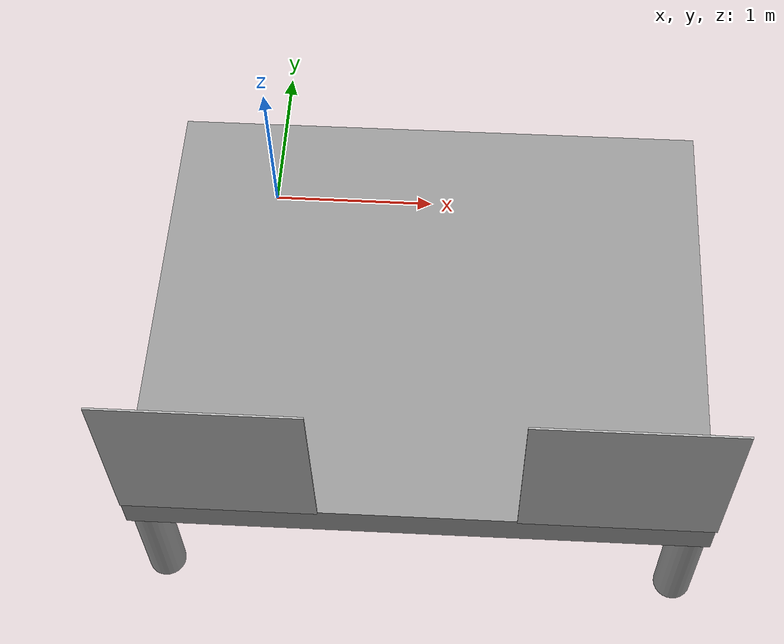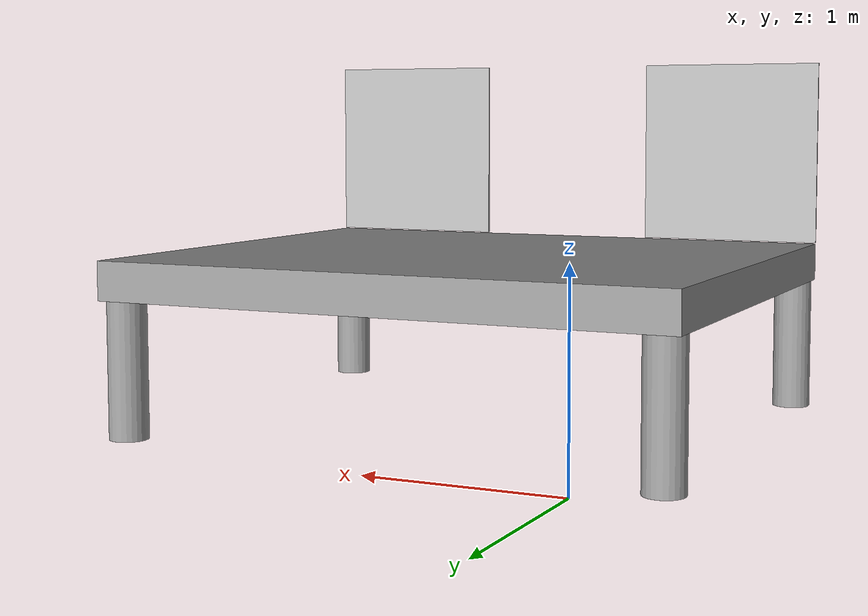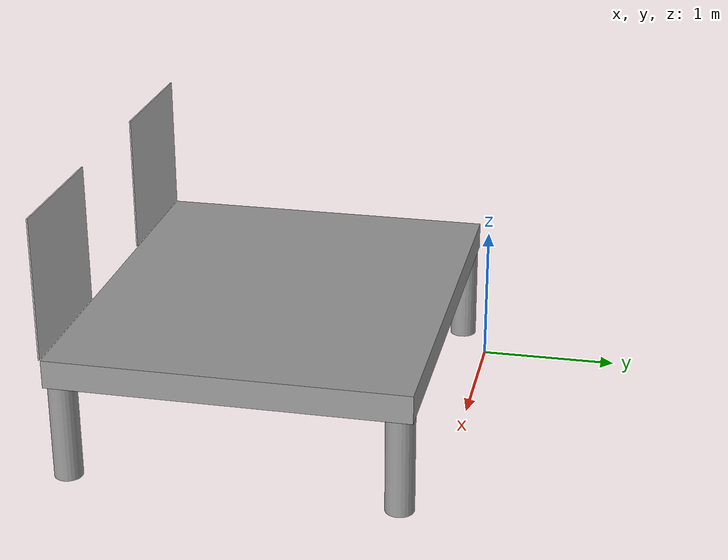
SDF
<?xml version='1.0'?>
<sdf version='1.6'>
  <model name='tag_table'>
    <model name='Apriltag36_11_00001'>
      <link name='main'>
        <pose frame=''>0 0 0 0 -0 0</pose>
        <visual name='main_Visual'>
          <geometry>
            <box>
              <size>1 1 0.01</size>
            </box>
          </geometry>
          <material>
            <script>
              <uri>model://Apriltag36_11_00001/materials/scripts</uri>
              <uri>model://Apriltag36_11_00001/materials/textures</uri>
              <name>Apriltag36_11_00001</name>
            </script>
          </material>
        </visual>
      </link>
      <static>1</static>
      <pose frame=''>0.051519 -2.63187 1.40505 1.5708 -0 0</pose>
    </model>
    <model name='Apriltag36_11_00002'>
      <link name='main'>
        <pose frame=''>0 0 0 0 -0 0</pose>
        <visual name='main_Visual'>
          <geometry>
            <box>
              <size>1 1 0.01</size>
            </box>
          </geometry>
          <material>
            <script>
              <uri>model://Apriltag36_11_00002/materials/scripts</uri>
              <uri>model://Apriltag36_11_00002/materials/textures</uri>
              <name>Apriltag36_11_00002</name>
            </script>
          </material>
        </visual>
      </link>
      <static>1</static>
      <pose frame=''>2.05722 -2.63187 1.40505 1.5708 -0 0</pose>
    </model>
    <model name='dock_table'>
      <link name='link_1'>
        <pose frame=''>1.4 1.15 0.35 0 -0 0</pose>
        <inertial>
          <mass>1</mass>
          <inertia>
            <ixx>0.145833</ixx>
            <ixy>0</ixy>
            <ixz>0</ixz>
            <iyy>0.145833</iyy>
            <iyz>0</iyz>
            <izz>0.125</izz>
          </inertia>
          <pose frame=''>0 0 0 0 -0 0</pose>
        </inertial>
        <gravity>1</gravity>
        <self_collide>0</self_collide>
        <kinematic>0</kinematic>
        <visual name='visual'>
          <pose frame=''>0 0 0 0 -0 0</pose>
          <geometry>
            <cylinder>
              <radius>0.1</radius>
              <length>0.7</length>
            </cylinder>
          </geometry>
          <material>
            <lighting>1</lighting>
            <script>
              <uri>file://media/materials/scripts/gazebo.material</uri>
              <name>Gazebo/Grey</name>
            </script>
            <shader type='pixel'>
              <normal_map>__default__</normal_map>
            </shader>
            <ambient>0.3 0.3 0.3 1</ambient>
            <diffuse>0.7 0.7 0.7 1</diffuse>
            <specular>0.01 0.01 0.01 1</specular>
            <emissive>0 0 0 1</emissive>
          </material>
          <transparency>0</transparency>
          <cast_shadows>1</cast_shadows>
        </visual>
        <collision name='collision'>
          <laser_retro>0</laser_retro>
          <max_contacts>10</max_contacts>
          <pose frame=''>0 0 0 0 -0 0</pose>
          <geometry>
            <cylinder>
              <radius>0.1</radius>
              <length>0.7</length>
            </cylinder>
          </geometry>
          <surface>
            <friction>
              <ode>
                <mu>1</mu>
                <mu2>1</mu2>
                <fdir1>0 0 0</fdir1>
                <slip1>0</slip1>
                <slip2>0</slip2>
              </ode>
              <torsional>
                <coefficient>1</coefficient>
                <patch_radius>0</patch_radius>
                <surface_radius>0</surface_radius>
                <use_patch_radius>1</use_patch_radius>
                <ode>
                  <slip>0</slip>
                </ode>
              </torsional>
            </friction>
            <bounce>
              <restitution_coefficient>0</restitution_coefficient>
              <threshold>1e+06</threshold>
            </bounce>
            <contact>
              <collide_without_contact>0</collide_without_contact>
              <collide_without_contact_bitmask>1</collide_without_contact_bitmask>
              <collide_bitmask>1</collide_bitmask>
              <ode>
                <soft_cfm>0</soft_cfm>
                <soft_erp>0.2</soft_erp>
                <kp>1e+13</kp>
                <kd>1</kd>
                <max_vel>0.01</max_vel>
                <min_depth>0</min_depth>
              </ode>
              <bullet>
                <split_impulse>1</split_impulse>
                <split_impulse_penetration_threshold>-0.01</split_impulse_penetration_threshold>
                <soft_cfm>0</soft_cfm>
                <soft_erp>0.2</soft_erp>
                <kp>1e+13</kp>
                <kd>1</kd>
              </bullet>
            </contact>
          </surface>
        </collision>
      </link>
      <link name='link_1_clone'>
        <pose frame=''>1.4 -1.15 0.35 0 -0 0</pose>
        <inertial>
          <mass>1</mass>
          <inertia>
            <ixx>0.145833</ixx>
            <ixy>0</ixy>
            <ixz>0</ixz>
            <iyy>0.145833</iyy>
            <iyz>0</iyz>
            <izz>0.125</izz>
          </inertia>
          <pose frame=''>0 0 0 0 -0 0</pose>
        </inertial>
        <self_collide>0</self_collide>
        <kinematic>0</kinematic>
        <gravity>1</gravity>
        <visual name='visual'>
          <pose frame=''>0 0 0 0 -0 0</pose>
          <geometry>
            <cylinder>
              <radius>0.1</radius>
              <length>0.7</length>
            </cylinder>
          </geometry>
          <material>
            <lighting>1</lighting>
            <script>
              <uri>file://media/materials/scripts/gazebo.material</uri>
              <name>Gazebo/Grey</name>
            </script>
            <shader type='pixel'>
              <normal_map>__default__</normal_map>
            </shader>
            <ambient>0.3 0.3 0.3 1</ambient>
            <diffuse>0.7 0.7 0.7 1</diffuse>
            <specular>0.01 0.01 0.01 1</specular>
            <emissive>0 0 0 1</emissive>
          </material>
          <transparency>0</transparency>
          <cast_shadows>1</cast_shadows>
        </visual>
        <collision name='collision'>
          <laser_retro>0</laser_retro>
          <max_contacts>10</max_contacts>
          <pose frame=''>0 0 0 0 -0 0</pose>
          <geometry>
            <cylinder>
              <radius>0.1</radius>
              <length>0.7</length>
            </cylinder>
          </geometry>
          <surface>
            <friction>
              <ode>
                <mu>1</mu>
                <mu2>1</mu2>
                <fdir1>0 0 0</fdir1>
                <slip1>0</slip1>
                <slip2>0</slip2>
              </ode>
              <torsional>
                <coefficient>1</coefficient>
                <patch_radius>0</patch_radius>
                <surface_radius>0</surface_radius>
                <use_patch_radius>1</use_patch_radius>
                <ode>
                  <slip>0</slip>
                </ode>
              </torsional>
            </friction>
            <bounce>
              <restitution_coefficient>0</restitution_coefficient>
              <threshold>1e+06</threshold>
            </bounce>
            <contact>
              <collide_without_contact>0</collide_without_contact>
              <collide_without_contact_bitmask>1</collide_without_contact_bitmask>
              <collide_bitmask>1</collide_bitmask>
              <ode>
                <soft_cfm>0</soft_cfm>
                <soft_erp>0.2</soft_erp>
                <kp>1e+13</kp>
                <kd>1</kd>
                <max_vel>0.01</max_vel>
                <min_depth>0</min_depth>
              </ode>
              <bullet>
                <split_impulse>1</split_impulse>
                <split_impulse_penetration_threshold>-0.01</split_impulse_penetration_threshold>
                <soft_cfm>0</soft_cfm>
                <soft_erp>0.2</soft_erp>
                <kp>1e+13</kp>
                <kd>1</kd>
              </bullet>
            </contact>
          </surface>
        </collision>
      </link>
      <link name='link_1_clone_0'>
        <pose frame=''>-1.4 1.15 0.35 0 -0 0</pose>
        <inertial>
          <mass>1</mass>
          <inertia>
            <ixx>0.145833</ixx>
            <ixy>0</ixy>
            <ixz>0</ixz>
            <iyy>0.145833</iyy>
            <iyz>0</iyz>
            <izz>0.125</izz>
          </inertia>
          <pose frame=''>0 0 0 0 -0 0</pose>
        </inertial>
        <self_collide>0</self_collide>
        <kinematic>0</kinematic>
        <gravity>1</gravity>
        <visual name='visual'>
          <pose frame=''>0 0 0 0 -0 0</pose>
          <geometry>
            <cylinder>
              <radius>0.1</radius>
              <length>0.7</length>
            </cylinder>
          </geometry>
          <material>
            <lighting>1</lighting>
            <script>
              <uri>file://media/materials/scripts/gazebo.material</uri>
              <name>Gazebo/Grey</name>
            </script>
            <shader type='pixel'>
              <normal_map>__default__</normal_map>
            </shader>
            <ambient>0.3 0.3 0.3 1</ambient>
            <diffuse>0.7 0.7 0.7 1</diffuse>
            <specular>0.01 0.01 0.01 1</specular>
            <emissive>0 0 0 1</emissive>
          </material>
          <transparency>0</transparency>
          <cast_shadows>1</cast_shadows>
        </visual>
        <collision name='collision'>
          <laser_retro>0</laser_retro>
          <max_contacts>10</max_contacts>
          <pose frame=''>0 0 0 0 -0 0</pose>
          <geometry>
            <cylinder>
              <radius>0.1</radius>
              <length>0.7</length>
            </cylinder>
          </geometry>
          <surface>
            <friction>
              <ode>
                <mu>1</mu>
                <mu2>1</mu2>
                <fdir1>0 0 0</fdir1>
                <slip1>0</slip1>
                <slip2>0</slip2>
              </ode>
              <torsional>
                <coefficient>1</coefficient>
                <patch_radius>0</patch_radius>
                <surface_radius>0</surface_radius>
                <use_patch_radius>1</use_patch_radius>
                <ode>
                  <slip>0</slip>
                </ode>
              </torsional>
            </friction>
            <bounce>
              <restitution_coefficient>0</restitution_coefficient>
              <threshold>1e+06</threshold>
            </bounce>
            <contact>
              <collide_without_contact>0</collide_without_contact>
              <collide_without_contact_bitmask>1</collide_without_contact_bitmask>
              <collide_bitmask>1</collide_bitmask>
              <ode>
                <soft_cfm>0</soft_cfm>
                <soft_erp>0.2</soft_erp>
                <kp>1e+13</kp>
                <kd>1</kd>
                <max_vel>0.01</max_vel>
                <min_depth>0</min_depth>
              </ode>
              <bullet>
                <split_impulse>1</split_impulse>
                <split_impulse_penetration_threshold>-0.01</split_impulse_penetration_threshold>
                <soft_cfm>0</soft_cfm>
                <soft_erp>0.2</soft_erp>
                <kp>1e+13</kp>
                <kd>1</kd>
              </bullet>
            </contact>
          </surface>
        </collision>
      </link>
      <link name='link_1_clone_1'>
        <pose frame=''>-1.4 -1.15 0.35 0 -0 0</pose>
        <inertial>
          <mass>1</mass>
          <inertia>
            <ixx>0.145833</ixx>
            <ixy>0</ixy>
            <ixz>0</ixz>
            <iyy>0.145833</iyy>
            <iyz>0</iyz>
            <izz>0.125</izz>
          </inertia>
          <pose frame=''>0 0 0 0 -0 0</pose>
        </inertial>
        <self_collide>0</self_collide>
        <kinematic>0</kinematic>
        <gravity>1</gravity>
        <visual name='visual'>
          <pose frame=''>0 0 0 0 -0 0</pose>
          <geometry>
            <cylinder>
              <radius>0.1</radius>
              <length>0.7</length>
            </cylinder>
          </geometry>
          <material>
            <lighting>1</lighting>
            <script>
              <uri>file://media/materials/scripts/gazebo.material</uri>
              <name>Gazebo/Grey</name>
            </script>
            <shader type='pixel'>
              <normal_map>__default__</normal_map>
            </shader>
            <ambient>0.3 0.3 0.3 1</ambient>
            <diffuse>0.7 0.7 0.7 1</diffuse>
            <specular>0.01 0.01 0.01 1</specular>
            <emissive>0 0 0 1</emissive>
          </material>
          <transparency>0</transparency>
          <cast_shadows>1</cast_shadows>
        </visual>
        <collision name='collision'>
          <laser_retro>0</laser_retro>
          <max_contacts>10</max_contacts>
          <pose frame=''>0 0 0 0 -0 0</pose>
          <geometry>
            <cylinder>
              <radius>0.1</radius>
              <length>0.7</length>
            </cylinder>
          </geometry>
          <surface>
            <friction>
              <ode>
                <mu>1</mu>
                <mu2>1</mu2>
                <fdir1>0 0 0</fdir1>
                <slip1>0</slip1>
                <slip2>0</slip2>
              </ode>
              <torsional>
                <coefficient>1</coefficient>
                <patch_radius>0</patch_radius>
                <surface_radius>0</surface_radius>
                <use_patch_radius>1</use_patch_radius>
                <ode>
                  <slip>0</slip>
                </ode>
              </torsional>
            </friction>
            <bounce>
              <restitution_coefficient>0</restitution_coefficient>
              <threshold>1e+06</threshold>
            </bounce>
            <contact>
              <collide_without_contact>0</collide_without_contact>
              <collide_without_contact_bitmask>1</collide_without_contact_bitmask>
              <collide_bitmask>1</collide_bitmask>
              <ode>
                <soft_cfm>0</soft_cfm>
                <soft_erp>0.2</soft_erp>
                <kp>1e+13</kp>
                <kd>1</kd>
                <max_vel>0.01</max_vel>
                <min_depth>0</min_depth>
              </ode>
              <bullet>
                <split_impulse>1</split_impulse>
                <split_impulse_penetration_threshold>-0.01</split_impulse_penetration_threshold>
                <soft_cfm>0</soft_cfm>
                <soft_erp>0.2</soft_erp>
                <kp>1e+13</kp>
                <kd>1</kd>
              </bullet>
            </contact>
          </surface>
        </collision>
      </link>
      <link name='link_2'>
        <pose frame=''>0 0 0.8 0 -0 0</pose>
        <inertial>
          <mass>1</mass>
          <inertia>
            <ixx>0.166667</ixx>
            <ixy>0</ixy>
            <ixz>0</ixz>
            <iyy>0.166667</iyy>
            <iyz>0</iyz>
            <izz>0.166667</izz>
          </inertia>
          <pose frame=''>0 0 0 0 -0 0</pose>
        </inertial>
        <gravity>1</gravity>
        <self_collide>0</self_collide>
        <kinematic>0</kinematic>
        <visual name='visual'>
          <pose frame=''>0 0 0 0 -0 0</pose>
          <geometry>
            <box>
              <size>3 2.5 0.2</size>
            </box>
          </geometry>
          <material>
            <lighting>1</lighting>
            <script>
              <uri>file://media/materials/scripts/gazebo.material</uri>
              <name>Gazebo/Grey</name>
            </script>
            <shader type='pixel'>
              <normal_map>__default__</normal_map>
            </shader>
            <ambient>0.3 0.3 0.3 1</ambient>
            <diffuse>0.7 0.7 0.7 1</diffuse>
            <specular>0.01 0.01 0.01 1</specular>
            <emissive>0 0 0 1</emissive>
          </material>
          <transparency>0</transparency>
          <cast_shadows>1</cast_shadows>
        </visual>
        <collision name='collision'>
          <laser_retro>0</laser_retro>
          <max_contacts>10</max_contacts>
          <pose frame=''>0 0 0 0 -0 0</pose>
          <geometry>
            <box>
              <size>3 2.5 0.2</size>
            </box>
          </geometry>
          <surface>
            <friction>
              <ode>
                <mu>1</mu>
                <mu2>1</mu2>
                <fdir1>0 0 0</fdir1>
                <slip1>0</slip1>
                <slip2>0</slip2>
              </ode>
              <torsional>
                <coefficient>1</coefficient>
                <patch_radius>0</patch_radius>
                <surface_radius>0</surface_radius>
                <use_patch_radius>1</use_patch_radius>
                <ode>
                  <slip>0</slip>
                </ode>
              </torsional>
            </friction>
            <bounce>
              <restitution_coefficient>0</restitution_coefficient>
              <threshold>1e+06</threshold>
            </bounce>
            <contact>
              <collide_without_contact>0</collide_without_contact>
              <collide_without_contact_bitmask>1</collide_without_contact_bitmask>
              <collide_bitmask>1</collide_bitmask>
              <ode>
                <soft_cfm>0</soft_cfm>
                <soft_erp>0.2</soft_erp>
                <kp>1e+13</kp>
                <kd>1</kd>
                <max_vel>0.01</max_vel>
                <min_depth>0</min_depth>
              </ode>
              <bullet>
                <split_impulse>1</split_impulse>
                <split_impulse_penetration_threshold>-0.01</split_impulse_penetration_threshold>
                <soft_cfm>0</soft_cfm>
                <soft_erp>0.2</soft_erp>
                <kp>1e+13</kp>
                <kd>1</kd>
              </bullet>
            </contact>
          </surface>
        </collision>
      </link>
      <joint name='link_2_JOINT_1' type='fixed'>
        <parent>link_2</parent>
        <child>link_1</child>
        <pose frame=''>0 0 0 0 -0 0</pose>
        <physics>
          <ode>
            <limit>
              <cfm>0</cfm>
              <erp>0.2</erp>
            </limit>
            <suspension>
              <cfm>0</cfm>
              <erp>0.2</erp>
            </suspension>
          </ode>
        </physics>
      </joint>
      <joint name='link_2_JOINT_2' type='fixed'>
        <parent>link_2</parent>
        <child>link_1_clone</child>
        <pose frame=''>0 0 0 0 -0 0</pose>
        <physics>
          <ode>
            <limit>
              <cfm>0</cfm>
              <erp>0.2</erp>
            </limit>
            <suspension>
              <cfm>0</cfm>
              <erp>0.2</erp>
            </suspension>
          </ode>
        </physics>
      </joint>
      <joint name='link_2_JOINT_3' type='fixed'>
        <parent>link_2</parent>
        <child>link_1_clone_1</child>
        <pose frame=''>0 0 0 0 -0 0</pose>
        <physics>
          <ode>
            <limit>
              <cfm>0</cfm>
              <erp>0.2</erp>
            </limit>
            <suspension>
              <cfm>0</cfm>
              <erp>0.2</erp>
            </suspension>
          </ode>
        </physics>
      </joint>
      <joint name='link_2_JOINT_4' type='fixed'>
        <parent>link_2</parent>
        <child>link_1_clone_0</child>
        <pose frame=''>0 0 0 0 -0 0</pose>
        <physics>
          <ode>
            <limit>
              <cfm>0</cfm>
              <erp>0.2</erp>
            </limit>
            <suspension>
              <cfm>0</cfm>
              <erp>0.2</erp>
            </suspension>
          </ode>
        </physics>
      </joint>
      <static>0</static>
      <allow_auto_disable>1</allow_auto_disable>
      <pose frame=''>1.05152 -1.37593 3e-06 0 -0 0</pose>
    </model>
    <static>0</static>
    <allow_auto_disable>1</allow_auto_disable>
  </model>
</sdf>
